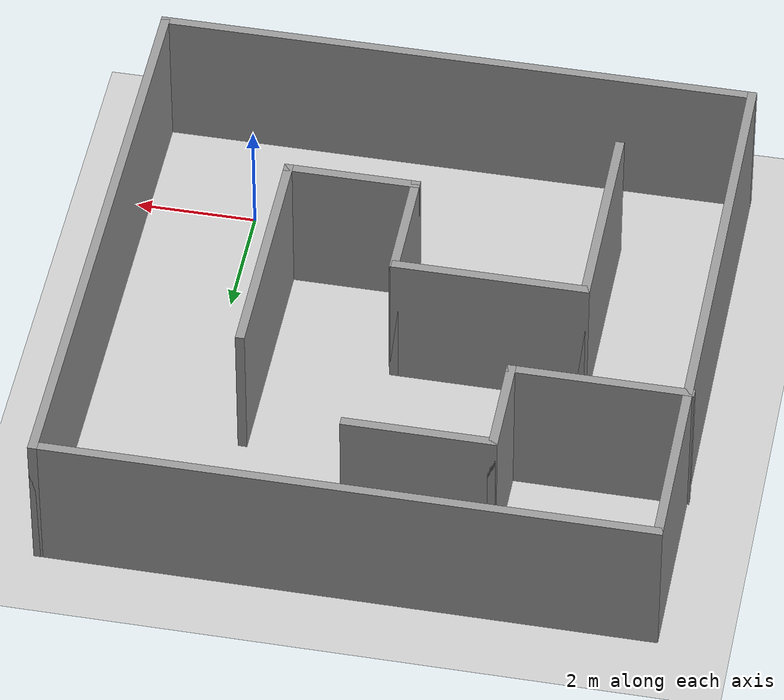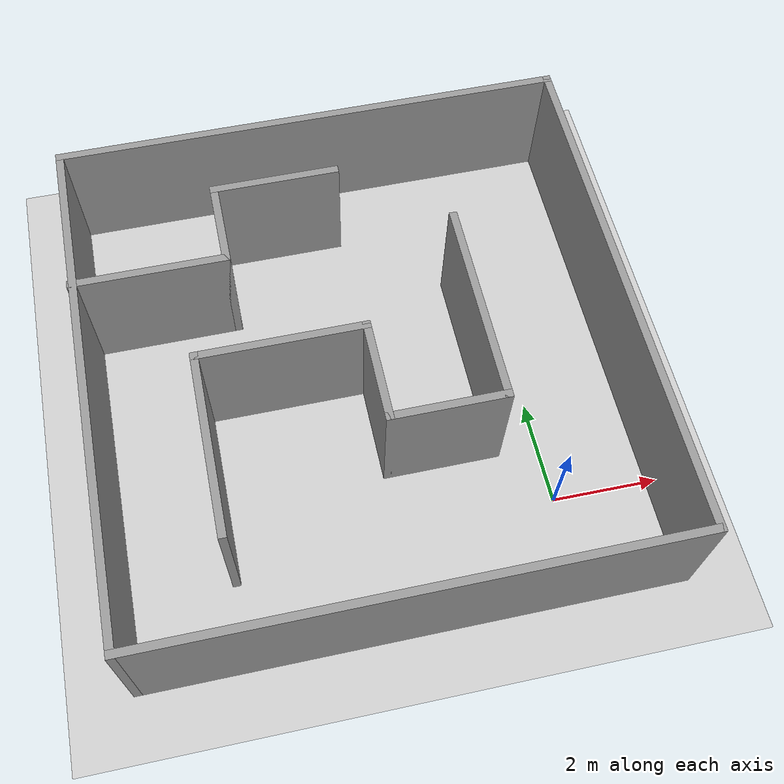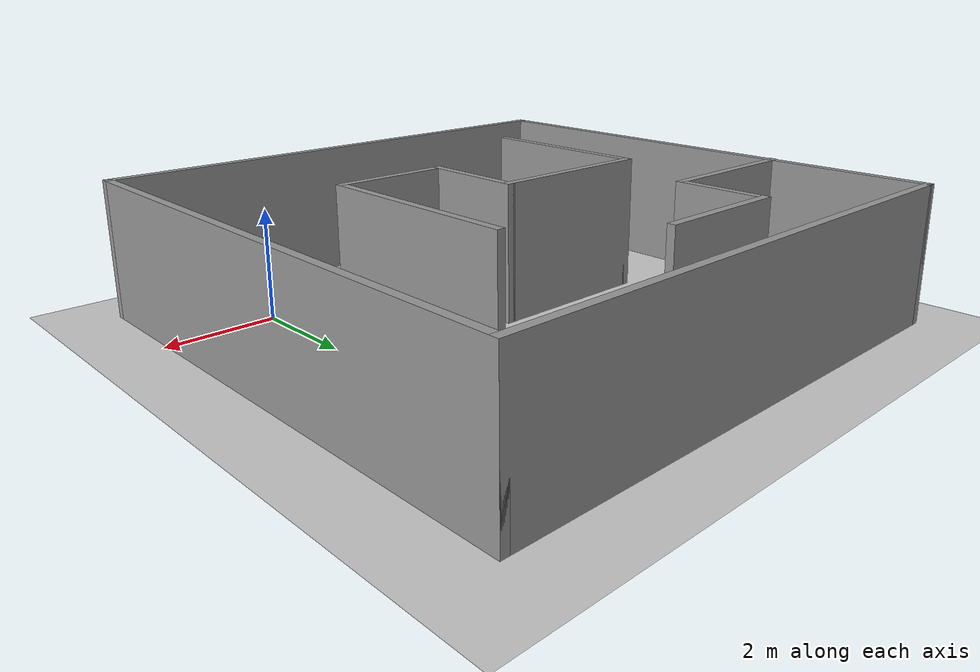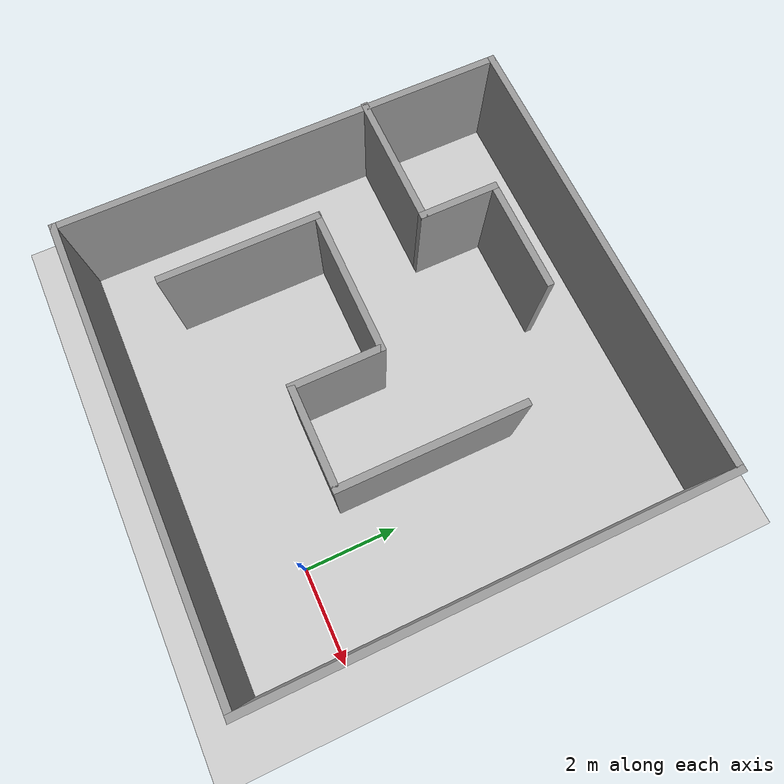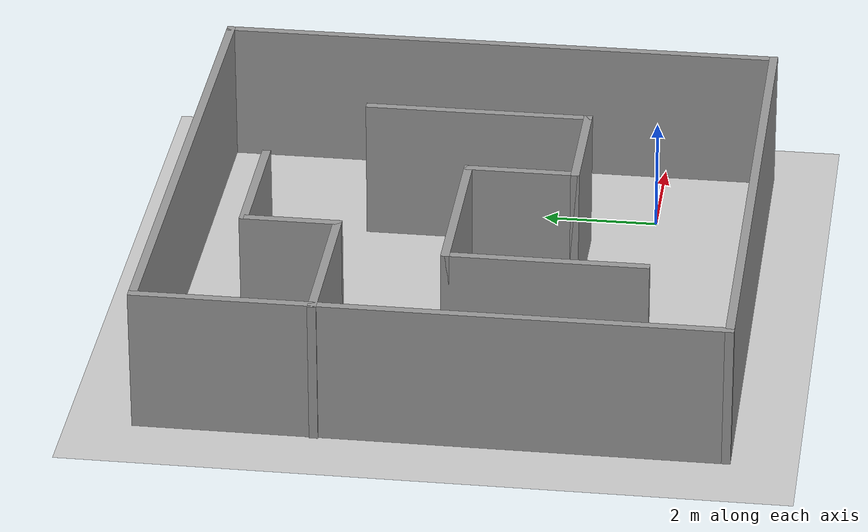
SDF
<sdf version="1.6">
 <world name="default">
  <light name="sun" type="directional">
   <pose>0 0 10 0 -0 0</pose>
   <diffuse>0.8 0.8 0.8 1</diffuse>
   <specular>0.2 0.2 0.2 1</specular>
   <attenuation>
    <range>1000</range>
    <constant>0.9</constant>
    <linear>0.01</linear>
    <quadratic>0.001</quadratic>
   </attenuation>
   <direction>-0.5 0.1 -0.9</direction>
  </light>
  <model name="ground_plane">
   <static>1</static>
   <link name="link">
    <collision name="collision">
     <geometry><plane><normal>0 0 1</normal><size>100 100</size></plane></geometry>
     <surface><friction><ode><mu>100</mu><mu2>50</mu2></ode></friction></surface>
    </collision>
    <visual name="visual">
     <cast_shadows>0</cast_shadows>
     <geometry><plane><normal>0 0 1</normal><size>100 100</size></plane></geometry>
     <material>
      <script><uri>file://media/materials/scripts/gazebo.material</uri><name>Gazebo/Grey</name></script>
     </material>
    </visual>
   </link>
  </model>
  <gravity>0 0 -9.8</gravity>
  <magnetic_field>6e-06 2.3e-05 -4.2e-05</magnetic_field>
  <atmosphere type="adiabatic"/>
  <physics name="default_physics" default="0" type="ode">
   <max_step_size>0.001</max_step_size>
   <real_time_factor>1</real_time_factor>
   <real_time_update_rate>1000</real_time_update_rate>
  </physics>
  <scene><ambient>0.4 0.4 0.4 1</ambient><background>0.7 0.7 0.7 1</background><shadows>1</shadows></scene>
  <audio><device>default</device></audio>
  <spherical_coordinates>
   <surface_model>EARTH_WGS84</surface_model>
   <latitude_deg>0</latitude_deg>
   <longitude_deg>0</longitude_deg>
   <elevation>0</elevation>
   <heading_deg>0</heading_deg>
  </spherical_coordinates>
  <model name="Untitled">
   <pose>-3.0733 3.02557 -0 0 -0 0</pose>
   <link name="Wall_13">
    <collision name="Wall_13_Collision">
     <geometry><box><size>10 0.15 2.5</size></box></geometry>
     <pose>0 0 1.25 0 -0 0</pose>
    </collision>
    <visual name="Wall_13_Visual">
     <pose>0 0 1.25 0 -0 0</pose>
     <geometry><box><size>10 0.15 2.5</size></box></geometry>
     <material>
      <script><uri>file://media/materials/scripts/gazebo.material</uri><name>Gazebo/Grey</name></script>
      <ambient>1 1 1 1</ambient>
     </material>
     <meta><layer>0</layer></meta>
    </visual>
    <pose>0.015146 4.925 0 0 -0 0</pose>
   </link>
   <link name="Wall_14">
    <collision name="Wall_14_Collision">
     <geometry><box><size>10 0.15 2.5</size></box></geometry>
     <pose>0 0 1.25 0 -0 0</pose>
    </collision>
    <visual name="Wall_14_Visual">
     <pose>0 0 1.25 0 -0 0</pose>
     <geometry><box><size>10 0.15 2.5</size></box></geometry>
     <material>
      <script><uri>file://media/materials/scripts/gazebo.material</uri><name>Gazebo/Grey</name></script>
      <ambient>1 1 1 1</ambient>
     </material>
     <meta><layer>0</layer></meta>
    </visual>
    <pose>4.94015 0 0 0 -0 -1.5708</pose>
   </link>
   <link name="Wall_15">
    <collision name="Wall_15_Collision">
     <geometry><box><size>10 0.15 2.5</size></box></geometry>
     <pose>0 0 1.25 0 -0 0</pose>
    </collision>
    <visual name="Wall_15_Visual">
     <pose>0 0 1.25 0 -0 0</pose>
     <geometry><box><size>10 0.15 2.5</size></box></geometry>
     <material>
      <script><uri>file://media/materials/scripts/gazebo.material</uri><name>Gazebo/Grey</name></script>
      <ambient>1 1 1 1</ambient>
     </material>
     <meta><layer>0</layer></meta>
    </visual>
    <pose>0.015146 -4.925 0 0 -0 3.14159</pose>
   </link>
   <link name="Wall_16">
    <collision name="Wall_16_Collision">
     <geometry><box><size>10 0.15 2.5</size></box></geometry>
     <pose>0 0 1.25 0 -0 0</pose>
    </collision>
    <visual name="Wall_16_Visual">
     <pose>0 0 1.25 0 -0 0</pose>
     <geometry><box><size>10 0.15 2.5</size></box></geometry>
     <material>
      <script><uri>file://media/materials/scripts/gazebo.material</uri><name>Gazebo/Grey</name></script>
      <ambient>1 1 1 1</ambient>
     </material>
     <meta><layer>0</layer></meta>
    </visual>
    <pose>-4.90985 0 0 0 -0 1.5708</pose>
   </link>
   <link name="Wall_18">
    <collision name="Wall_18_Collision">
     <geometry><box><size>3 0.15 2.5</size></box></geometry>
     <pose>0 0 1.25 0 -0 0</pose>
    </collision>
    <visual name="Wall_18_Visual">
     <pose>0 0 1.25 0 -0 0</pose>
     <geometry><box><size>3 0.15 2.5</size></box></geometry>
     <material>
      <script><uri>file://media/materials/scripts/gazebo.material</uri><name>Gazebo/Grey</name></script>
      <ambient>1 1 1 1</ambient>
     </material>
     <meta><layer>0</layer></meta>
    </visual>
    <pose>-3.51515 1.9322 0 0 -0 0</pose>
   </link>
   <link name="Wall_19">
    <collision name="Wall_19_Collision">
     <geometry><box><size>1.75 0.15 2.5</size></box></geometry>
     <pose>0 0 1.25 0 -0 0</pose>
    </collision>
    <visual name="Wall_19_Visual">
     <pose>0 0 1.25 0 -0 0</pose>
     <geometry><box><size>1.75 0.15 2.5</size></box></geometry>
     <material>
      <script><uri>file://media/materials/scripts/gazebo.material</uri><name>Gazebo/Grey</name></script>
      <ambient>1 1 1 1</ambient>
     </material>
     <meta><layer>0</layer></meta>
    </visual>
    <pose>-2.09015 2.7322 0 0 -0 1.5708</pose>
   </link>
   <link name="Wall_20">
    <collision name="Wall_20_Collision">
     <geometry><box><size>2.5 0.15 2.5</size></box></geometry>
     <pose>0 0 1.25 0 -0 0</pose>
    </collision>
    <visual name="Wall_20_Visual">
     <pose>0 0 1.25 0 -0 0</pose>
     <geometry><box><size>2.5 0.15 2.5</size></box></geometry>
     <material>
      <script><uri>file://media/materials/scripts/gazebo.material</uri><name>Gazebo/Grey</name></script>
      <ambient>1 1 1 1</ambient>
     </material>
     <meta><layer>0</layer></meta>
    </visual>
    <pose>-0.915148 3.5322 0 0 -0 0</pose>
   </link>
   <link name="Wall_22">
    <collision name="Wall_22_Collision">
     <geometry><box><size>3.5 0.15 2.5</size></box></geometry>
     <pose>0 0 1.25 0 -0 0</pose>
    </collision>
    <visual name="Wall_22_Visual">
     <pose>0 0 1.25 0 -0 0</pose>
     <geometry><box><size>3.5 0.15 2.5</size></box></geometry>
     <material>
      <script><uri>file://media/materials/scripts/gazebo.material</uri><name>Gazebo/Grey</name></script>
      <ambient>1 1 1 1</ambient>
     </material>
     <meta><layer>0</layer></meta>
    </visual>
    <pose>-2.9564 -1.68855 0 0 -0 1.5708</pose>
   </link>
   <link name="Wall_23">
    <collision name="Wall_23_Collision">
     <geometry><box><size>3.25 0.15 2.5</size></box></geometry>
     <pose>0 0 1.25 0 -0 0</pose>
    </collision>
    <visual name="Wall_23_Visual">
     <pose>0 0 1.25 0 -0 0</pose>
     <geometry><box><size>3.25 0.15 2.5</size></box></geometry>
     <material>
      <script><uri>file://media/materials/scripts/gazebo.material</uri><name>Gazebo/Grey</name></script>
      <ambient>1 1 1 1</ambient>
     </material>
     <meta><layer>0</layer></meta>
    </visual>
    <pose>-1.4064 -0.013549 0 0 -0 0</pose>
   </link>
   <link name="Wall_24">
    <collision name="Wall_24_Collision">
     <geometry><box><size>2 0.15 2.5</size></box></geometry>
     <pose>0 0 1.25 0 -0 0</pose>
    </collision>
    <visual name="Wall_24_Visual">
     <pose>0 0 1.25 0 -0 0</pose>
     <geometry><box><size>2 0.15 2.5</size></box></geometry>
     <material>
      <script><uri>file://media/materials/scripts/gazebo.material</uri><name>Gazebo/Grey</name></script>
      <ambient>1 1 1 1</ambient>
     </material>
     <meta><layer>0</layer></meta>
    </visual>
    <pose>0.143603 -0.938549 0 0 -0 -1.5708</pose>
   </link>
   <link name="Wall_25">
    <collision name="Wall_25_Collision">
     <geometry><box><size>2.25 0.15 2.5</size></box></geometry>
     <pose>0 0 1.25 0 -0 0</pose>
    </collision>
    <visual name="Wall_25_Visual">
     <pose>0 0 1.25 0 -0 0</pose>
     <geometry><box><size>2.25 0.15 2.5</size></box></geometry>
     <material>
      <script><uri>file://media/materials/scripts/gazebo.material</uri><name>Gazebo/Grey</name></script>
      <ambient>1 1 1 1</ambient>
     </material>
     <meta><layer>0</layer></meta>
    </visual>
    <pose>1.1936 -1.86355 0 0 -0 0</pose>
   </link>
   <link name="Wall_26">
    <collision name="Wall_26_Collision">
     <geometry><box><size>4 0.15 2.5</size></box></geometry>
     <pose>0 0 1.25 0 -0 0</pose>
    </collision>
    <visual name="Wall_26_Visual">
     <pose>0 0 1.25 0 -0 0</pose>
     <geometry><box><size>4 0.15 2.5</size></box></geometry>
     <material>
      <script><uri>file://media/materials/scripts/gazebo.material</uri><name>Gazebo/Grey</name></script>
      <ambient>1 1 1 1</ambient>
     </material>
     <meta><layer>0</layer></meta>
    </visual>
    <pose>2.2436 0.061451 0 0 -0 1.5708</pose>
   </link>
   <static>1</static>
  </model>
 </world>
</sdf>
